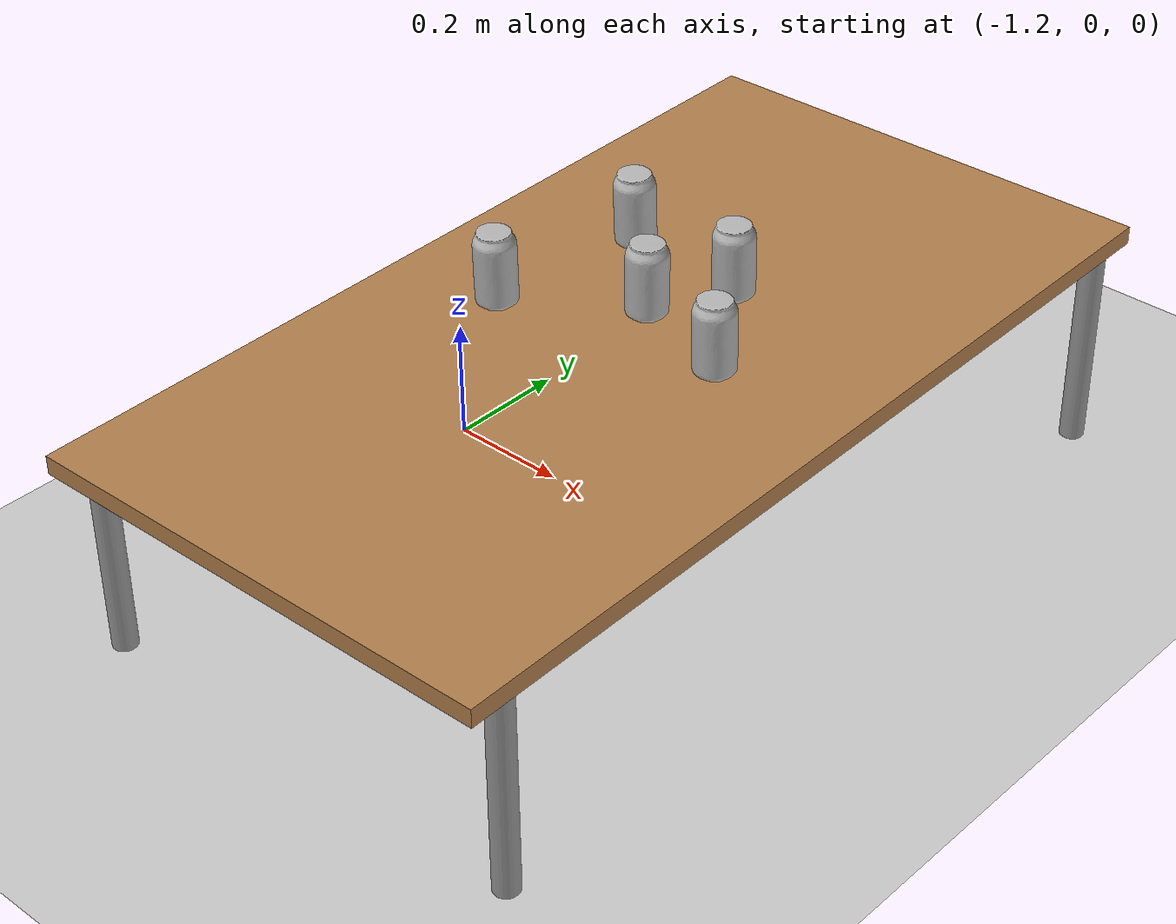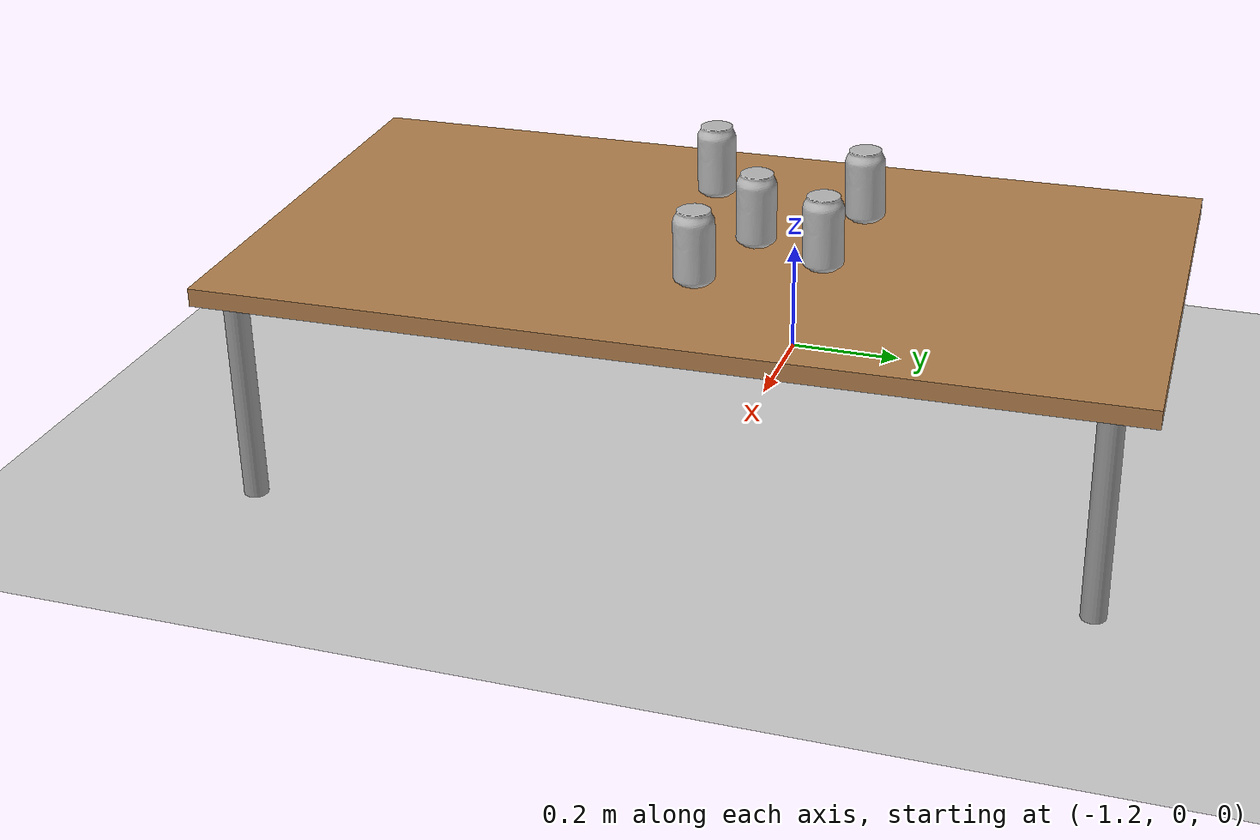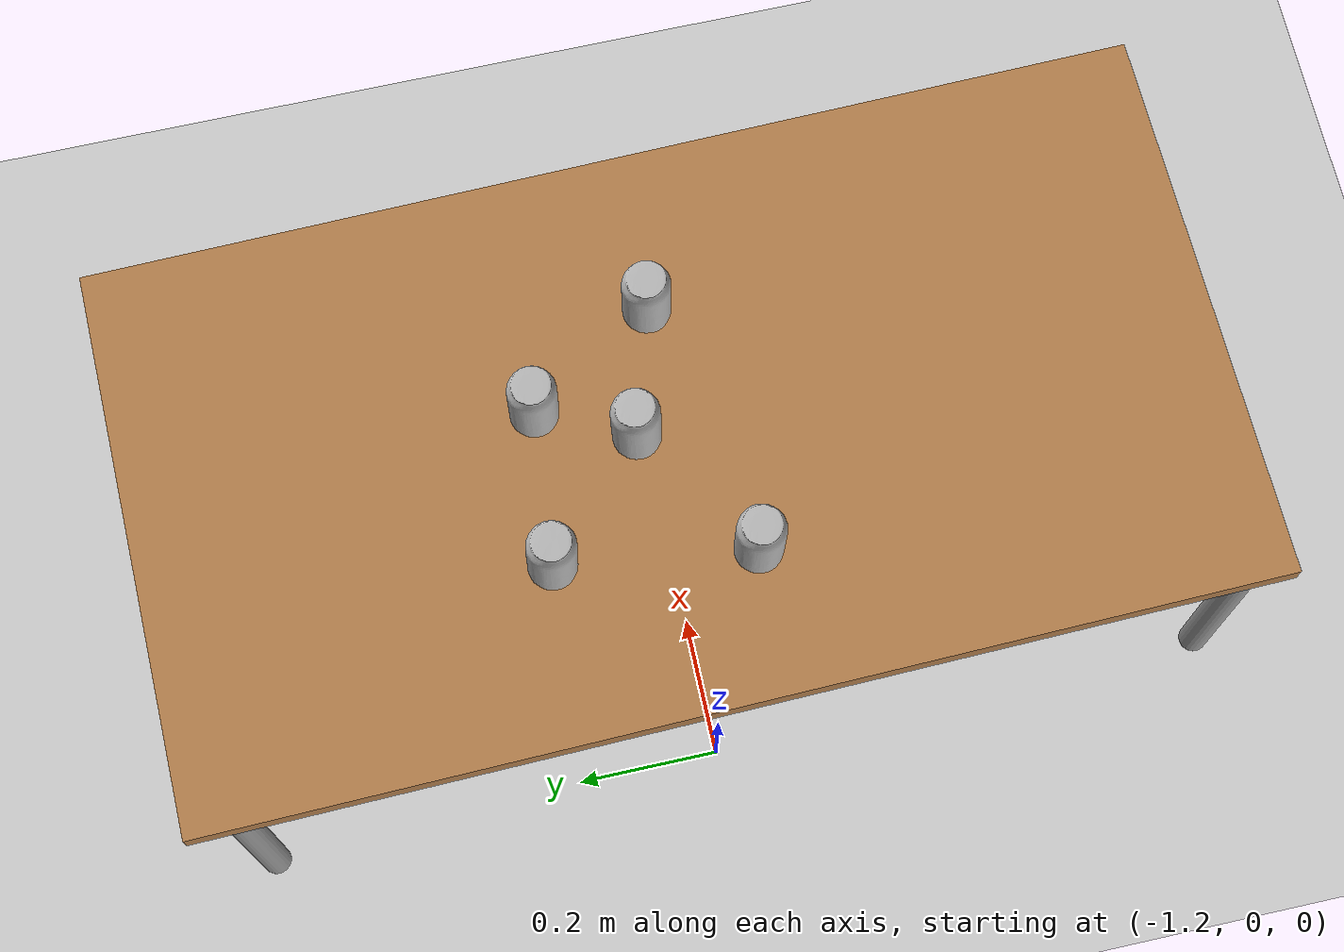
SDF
<sdf version="1.6">
 <world name="default">
  <model name="ground_plane">
   <static>1</static>
   <link name="link">
    <collision name="collision">
     <geometry><plane><normal>0 0 1</normal><size>100 100</size></plane></geometry>
     <surface>
      <contact><collide_bitmask>65535</collide_bitmask></contact>
      <friction><ode><mu>100</mu><mu2>50</mu2></ode></friction>
     </surface>
    </collision>
    <visual name="visual">
     <cast_shadows>0</cast_shadows>
     <geometry><plane><normal>0 0 1</normal><size>100 100</size></plane></geometry>
     <material>
      <script><uri>file://media/materials/scripts/gazebo.material</uri><name>Gazebo/Grey</name></script>
     </material>
    </visual>
   </link>
  </model>
  <light name="sun" type="directional">
   <pose>0 0 10 0 -0 0</pose>
   <diffuse>0.8 0.8 0.8 1</diffuse>
   <specular>0.2 0.2 0.2 1</specular>
   <attenuation>
    <range>1000</range>
    <constant>0.9</constant>
    <linear>0.01</linear>
    <quadratic>0.001</quadratic>
   </attenuation>
   <direction>-0.5 0.1 -0.9</direction>
  </light>
  <gravity>0 0 -9.8</gravity>
  <magnetic_field>6e-06 2.3e-05 -4.2e-05</magnetic_field>
  <atmosphere type="adiabatic"/>
  <physics name="default_physics" default="0" type="ode">
   <max_step_size>0.001</max_step_size>
   <real_time_factor>1</real_time_factor>
   <real_time_update_rate>1000</real_time_update_rate>
  </physics>
  <scene><ambient>0.4 0.4 0.4 1</ambient><background>0.7 0.7 0.7 1</background><shadows>1</shadows></scene>
  <audio><device>default</device></audio>
  <spherical_coordinates>
   <surface_model>EARTH_WGS84</surface_model>
   <latitude_deg>0</latitude_deg>
   <longitude_deg>0</longitude_deg>
   <elevation>0</elevation>
   <heading_deg>0</heading_deg>
  </spherical_coordinates>
  <model name="short_table">
   <link name="link">
    <inertial>
     <mass>1</mass>
     <inertia><ixx>1</ixx><ixy>0</ixy><ixz>0</ixz><iyy>1</iyy><iyz>0</iyz><izz>1</izz></inertia>
    </inertial>
    <visual name="front_left_leg">
     <pose>0.68 0.38 0.175 0 -0 0</pose>
     <geometry><cylinder><radius>0.02</radius><length>0.35</length></cylinder></geometry>
     <material>
      <script><uri>file://media/materials/scripts/gazebo.material</uri><name>Gazebo/Grey</name></script>
      <shader type="vertex"><normal_map>__default__</normal_map></shader>
      <ambient>0.3 0.3 0.3 1</ambient>
      <diffuse>0.7 0.7 0.7 1</diffuse>
      <specular>0.01 0.01 0.01 1</specular>
      <emissive>0 0 0 1</emissive>
     </material>
    </visual>
    <visual name="visual1">
     <pose>0 0 0.35 0 -0 0</pose>
     <geometry><box><size>1.5 0.8 0.03</size></box></geometry>
     <material>
      <script><uri>file://media/materials/scripts/gazebo.material</uri><name>Gazebo/Wood</name></script>
      <shader type="vertex"><normal_map>__default__</normal_map></shader>
      <ambient>1 1 1 1</ambient>
      <diffuse>1 1 1 1</diffuse>
      <specular>0.2 0.2 0.2 1</specular>
      <emissive>0 0 0 1</emissive>
     </material>
    </visual>
    <visual name="back_right_leg">
     <pose>-0.68 -0.38 0.175 0 -0 0</pose>
     <geometry><cylinder><radius>0.02</radius><length>0.35</length></cylinder></geometry>
     <material>
      <script><uri>file://media/materials/scripts/gazebo.material</uri><name>Gazebo/Grey</name></script>
      <shader type="vertex"><normal_map>__default__</normal_map></shader>
      <ambient>0.3 0.3 0.3 1</ambient>
      <diffuse>0.7 0.7 0.7 1</diffuse>
      <specular>0.01 0.01 0.01 1</specular>
      <emissive>0 0 0 1</emissive>
     </material>
    </visual>
    <visual name="back_left_leg">
     <pose>-0.68 0.38 0.175 0 -0 0</pose>
     <geometry><cylinder><radius>0.02</radius><length>0.35</length></cylinder></geometry>
     <material>
      <script><uri>file://media/materials/scripts/gazebo.material</uri><name>Gazebo/Grey</name></script>
      <shader type="vertex"><normal_map>__default__</normal_map></shader>
      <ambient>0.3 0.3 0.3 1</ambient>
      <diffuse>0.7 0.7 0.7 1</diffuse>
      <specular>0.01 0.01 0.01 1</specular>
      <emissive>0 0 0 1</emissive>
     </material>
    </visual>
    <visual name="front_right_leg">
     <pose>0.68 -0.38 0.175 0 -0 0</pose>
     <geometry><cylinder><radius>0.02</radius><length>0.35</length></cylinder></geometry>
     <material>
      <script><uri>file://media/materials/scripts/gazebo.material</uri><name>Gazebo/Grey</name></script>
      <shader type="vertex"><normal_map>__default__</normal_map></shader>
      <ambient>0.3 0.3 0.3 1</ambient>
      <diffuse>0.7 0.7 0.7 1</diffuse>
      <specular>0.01 0.01 0.01 1</specular>
      <emissive>0 0 0 1</emissive>
     </material>
    </visual>
    <collision name="back_right_leg">
     <pose>-0.68 -0.38 0.175 0 -0 0</pose>
     <geometry><cylinder><radius>0.02</radius><length>0.35</length></cylinder></geometry>
     <surface>
      <friction>
       <ode><mu>1</mu><mu2>1</mu2><fdir1>0 0 0</fdir1><slip1>0</slip1><slip2>0</slip2></ode>
       <torsional>
        <coefficient>1</coefficient>
        <patch_radius>0</patch_radius>
        <surface_radius>0</surface_radius>
        <use_patch_radius>1</use_patch_radius>
        <ode><slip>0</slip></ode>
       </torsional>
      </friction>
      <bounce><restitution_coefficient>0</restitution_coefficient><threshold>1e+06</threshold></bounce>
      <contact>
       <collide_without_contact>0</collide_without_contact>
       <collide_without_contact_bitmask>1</collide_without_contact_bitmask>
       <collide_bitmask>1</collide_bitmask>
       <ode>
        <soft_cfm>0</soft_cfm>
        <soft_erp>0.2</soft_erp>
        <kp>1e+13</kp>
        <kd>1</kd>
        <max_vel>0.01</max_vel>
        <min_depth>0</min_depth>
       </ode>
       <bullet>
        <split_impulse>1</split_impulse>
        <split_impulse_penetration_threshold>-0.01</split_impulse_penetration_threshold>
        <soft_cfm>0</soft_cfm>
        <soft_erp>0.2</soft_erp>
        <kp>1e+13</kp>
        <kd>1</kd>
       </bullet>
      </contact>
     </surface>
    </collision>
    <collision name="front_right_leg">
     <pose>0.68 -0.38 0.175 0 -0 0</pose>
     <geometry><cylinder><radius>0.02</radius><length>0.35</length></cylinder></geometry>
     <surface>
      <friction>
       <ode><mu>1</mu><mu2>1</mu2><fdir1>0 0 0</fdir1><slip1>0</slip1><slip2>0</slip2></ode>
       <torsional>
        <coefficient>1</coefficient>
        <patch_radius>0</patch_radius>
        <surface_radius>0</surface_radius>
        <use_patch_radius>1</use_patch_radius>
        <ode><slip>0</slip></ode>
       </torsional>
      </friction>
      <bounce><restitution_coefficient>0</restitution_coefficient><threshold>1e+06</threshold></bounce>
      <contact>
       <collide_without_contact>0</collide_without_contact>
       <collide_without_contact_bitmask>1</collide_without_contact_bitmask>
       <collide_bitmask>1</collide_bitmask>
       <ode>
        <soft_cfm>0</soft_cfm>
        <soft_erp>0.2</soft_erp>
        <kp>1e+13</kp>
        <kd>1</kd>
        <max_vel>0.01</max_vel>
        <min_depth>0</min_depth>
       </ode>
       <bullet>
        <split_impulse>1</split_impulse>
        <split_impulse_penetration_threshold>-0.01</split_impulse_penetration_threshold>
        <soft_cfm>0</soft_cfm>
        <soft_erp>0.2</soft_erp>
        <kp>1e+13</kp>
        <kd>1</kd>
       </bullet>
      </contact>
     </surface>
    </collision>
    <collision name="front_left_leg">
     <pose>0.68 0.38 0.175 0 -0 0</pose>
     <geometry><cylinder><radius>0.02</radius><length>0.35</length></cylinder></geometry>
     <surface>
      <friction>
       <ode><mu>1</mu><mu2>1</mu2><fdir1>0 0 0</fdir1><slip1>0</slip1><slip2>0</slip2></ode>
       <torsional>
        <coefficient>1</coefficient>
        <patch_radius>0</patch_radius>
        <surface_radius>0</surface_radius>
        <use_patch_radius>1</use_patch_radius>
        <ode><slip>0</slip></ode>
       </torsional>
      </friction>
      <bounce><restitution_coefficient>0</restitution_coefficient><threshold>1e+06</threshold></bounce>
      <contact>
       <collide_without_contact>0</collide_without_contact>
       <collide_without_contact_bitmask>1</collide_without_contact_bitmask>
       <collide_bitmask>1</collide_bitmask>
       <ode>
        <soft_cfm>0</soft_cfm>
        <soft_erp>0.2</soft_erp>
        <kp>1e+13</kp>
        <kd>1</kd>
        <max_vel>0.01</max_vel>
        <min_depth>0</min_depth>
       </ode>
       <bullet>
        <split_impulse>1</split_impulse>
        <split_impulse_penetration_threshold>-0.01</split_impulse_penetration_threshold>
        <soft_cfm>0</soft_cfm>
        <soft_erp>0.2</soft_erp>
        <kp>1e+13</kp>
        <kd>1</kd>
       </bullet>
      </contact>
     </surface>
    </collision>
    <collision name="back_left_leg">
     <pose>-0.68 0.38 0.175 0 -0 0</pose>
     <geometry><cylinder><radius>0.02</radius><length>0.35</length></cylinder></geometry>
     <surface>
      <friction>
       <ode><mu>1</mu><mu2>1</mu2><fdir1>0 0 0</fdir1><slip1>0</slip1><slip2>0</slip2></ode>
       <torsional>
        <coefficient>1</coefficient>
        <patch_radius>0</patch_radius>
        <surface_radius>0</surface_radius>
        <use_patch_radius>1</use_patch_radius>
        <ode><slip>0</slip></ode>
       </torsional>
      </friction>
      <bounce><restitution_coefficient>0</restitution_coefficient><threshold>1e+06</threshold></bounce>
      <contact>
       <collide_without_contact>0</collide_without_contact>
       <collide_without_contact_bitmask>1</collide_without_contact_bitmask>
       <collide_bitmask>1</collide_bitmask>
       <ode>
        <soft_cfm>0</soft_cfm>
        <soft_erp>0.2</soft_erp>
        <kp>1e+13</kp>
        <kd>1</kd>
        <max_vel>0.01</max_vel>
        <min_depth>0</min_depth>
       </ode>
       <bullet>
        <split_impulse>1</split_impulse>
        <split_impulse_penetration_threshold>-0.01</split_impulse_penetration_threshold>
        <soft_cfm>0</soft_cfm>
        <soft_erp>0.2</soft_erp>
        <kp>1e+13</kp>
        <kd>1</kd>
       </bullet>
      </contact>
     </surface>
    </collision>
    <collision name="surface">
     <pose>0 0 0.35 0 -0 0</pose>
     <geometry><box><size>1.5 0.8 0.03</size></box></geometry>
     <surface>
      <friction>
       <ode><mu>0.6</mu><mu2>0.6</mu2><fdir1>0 0 0</fdir1><slip1>0</slip1><slip2>0</slip2></ode>
       <torsional>
        <coefficient>1</coefficient>
        <patch_radius>0</patch_radius>
        <surface_radius>0</surface_radius>
        <use_patch_radius>1</use_patch_radius>
        <ode><slip>0</slip></ode>
       </torsional>
      </friction>
      <bounce><restitution_coefficient>0</restitution_coefficient><threshold>1e+06</threshold></bounce>
      <contact>
       <collide_without_contact>0</collide_without_contact>
       <collide_without_contact_bitmask>1</collide_without_contact_bitmask>
       <collide_bitmask>1</collide_bitmask>
       <ode>
        <soft_cfm>0</soft_cfm>
        <soft_erp>0.2</soft_erp>
        <kp>1e+13</kp>
        <kd>1</kd>
        <max_vel>0.01</max_vel>
        <min_depth>0</min_depth>
       </ode>
       <bullet>
        <split_impulse>1</split_impulse>
        <split_impulse_penetration_threshold>-0.01</split_impulse_penetration_threshold>
        <soft_cfm>0</soft_cfm>
        <soft_erp>0.2</soft_erp>
        <kp>1e+13</kp>
        <kd>1</kd>
       </bullet>
      </contact>
     </surface>
    </collision>
   </link>
   <static>1</static>
   <pose>-0.819626 -0.028687 0 0 -0 1.59322</pose>
  </model>
  <model name="coke_can">
   <link name="link">
    <inertial>
     <pose>0 0 0.06 0 -0 0</pose>
     <mass>0.39</mass>
     <inertia>
      <ixx>0.00055575</ixx>
      <ixy>0</ixy>
      <ixz>0</ixz>
      <iyy>0.00055575</iyy>
      <iyz>0</iyz>
      <izz>0.0001755</izz>
     </inertia>
    </inertial>
    <collision name="collision">
     <pose>0.003937 0.004724 -0.18 0 -0 0</pose>
     <geometry><mesh><uri>model://coke_can/meshes/coke_can.dae</uri></mesh></geometry>
     <surface>
      <friction><ode><mu>1</mu><mu2>1</mu2></ode></friction>
      <contact><ode><kp>1e+07</kp><kd>1</kd><min_depth>0.001</min_depth><max_vel>0.1</max_vel></ode></contact>
     </surface>
    </collision>
    <visual name="visual">
     <pose>0.003937 0.004724 -0.18 0 -0 0</pose>
     <geometry><mesh><uri>model://coke_can/meshes/coke_can.dae</uri></mesh></geometry>
    </visual>
   </link>
   <pose>-0.655124 -0.019872 0.361561 0.001933 -0.012631 -0.000331</pose>
  </model>
  <model name="coke_can_0">
   <link name="link">
    <inertial>
     <pose>0 0 0.06 0 -0 0</pose>
     <mass>0.39</mass>
     <inertia>
      <ixx>0.00055575</ixx>
      <ixy>0</ixy>
      <ixz>0</ixz>
      <iyy>0.00055575</iyy>
      <iyz>0</iyz>
      <izz>0.0001755</izz>
     </inertia>
    </inertial>
    <collision name="collision">
     <pose>0.003937 0.004724 -0.18 0 -0 0</pose>
     <geometry><mesh><uri>model://coke_can/meshes/coke_can.dae</uri></mesh></geometry>
     <surface>
      <friction><ode><mu>1</mu><mu2>1</mu2></ode></friction>
      <contact><ode><kp>1e+07</kp><kd>1</kd><min_depth>0.001</min_depth><max_vel>0.1</max_vel></ode></contact>
     </surface>
    </collision>
    <visual name="visual">
     <pose>0.003937 0.004724 -0.18 0 -0 0</pose>
     <geometry><mesh><uri>model://coke_can/meshes/coke_can.dae</uri></mesh></geometry>
    </visual>
   </link>
   <pose>-1.01877 -0.092257 0.361885 0.011945 -0.009279 -2.3e-05</pose>
  </model>
  <model name="coke_can_1">
   <link name="link">
    <inertial>
     <pose>0 0 0.06 0 -0 0</pose>
     <mass>0.39</mass>
     <inertia>
      <ixx>0.00055575</ixx>
      <ixy>0</ixy>
      <ixz>0</ixz>
      <iyy>0.00055575</iyy>
      <iyz>0</iyz>
      <izz>0.0001755</izz>
     </inertia>
    </inertial>
    <collision name="collision">
     <pose>0.003937 0.004724 -0.18 0 -0 0</pose>
     <geometry><mesh><uri>model://coke_can/meshes/coke_can.dae</uri></mesh></geometry>
     <surface>
      <friction><ode><mu>1</mu><mu2>1</mu2></ode></friction>
      <contact><ode><kp>1e+07</kp><kd>1</kd><min_depth>0.001</min_depth><max_vel>0.1</max_vel></ode></contact>
     </surface>
    </collision>
    <visual name="visual">
     <pose>0.003937 0.004724 -0.18 0 -0 0</pose>
     <geometry><mesh><uri>model://coke_can/meshes/coke_can.dae</uri></mesh></geometry>
    </visual>
   </link>
   <pose>-0.982407 0.178335 0.361745 0.025965 -0.004893 -3.5e-05</pose>
  </model>
  <model name="coke_can_2">
   <link name="link">
    <inertial>
     <pose>0 0 0.06 0 -0 0</pose>
     <mass>0.39</mass>
     <inertia>
      <ixx>0.00055575</ixx>
      <ixy>0</ixy>
      <ixz>0</ixz>
      <iyy>0.00055575</iyy>
      <iyz>0</iyz>
      <izz>0.0001755</izz>
     </inertia>
    </inertial>
    <collision name="collision">
     <pose>0.003937 0.004724 -0.18 0 -0 0</pose>
     <geometry><mesh><uri>model://coke_can/meshes/coke_can.dae</uri></mesh></geometry>
     <surface>
      <friction><ode><mu>1</mu><mu2>1</mu2></ode></friction>
      <contact><ode><kp>1e+07</kp><kd>1</kd><min_depth>0.001</min_depth><max_vel>0.1</max_vel></ode></contact>
     </surface>
    </collision>
    <visual name="visual">
     <pose>0.003937 0.004724 -0.18 0 -0 0</pose>
     <geometry><mesh><uri>model://coke_can/meshes/coke_can.dae</uri></mesh></geometry>
    </visual>
   </link>
   <pose>-0.829998 0.031059 0.36243 -0.010008 0.003576 -0.002124</pose>
  </model>
  <model name="coke_can_3">
   <link name="link">
    <inertial>
     <pose>0 0 0.06 0 -0 0</pose>
     <mass>0.39</mass>
     <inertia>
      <ixx>0.00055575</ixx>
      <ixy>0</ixy>
      <ixz>0</ixz>
      <iyy>0.00055575</iyy>
      <iyz>0</iyz>
      <izz>0.0001755</izz>
     </inertia>
    </inertial>
    <collision name="collision">
     <pose>0.003937 0.004724 -0.18 0 -0 0</pose>
     <geometry><mesh><uri>model://coke_can/meshes/coke_can.dae</uri></mesh></geometry>
     <surface>
      <friction><ode><mu>1</mu><mu2>1</mu2></ode></friction>
      <contact><ode><kp>1e+07</kp><kd>1</kd><min_depth>0.001</min_depth><max_vel>0.1</max_vel></ode></contact>
     </surface>
    </collision>
    <visual name="visual">
     <pose>0.003937 0.004724 -0.18 0 -0 0</pose>
     <geometry><mesh><uri>model://coke_can/meshes/coke_can.dae</uri></mesh></geometry>
    </visual>
   </link>
   <pose>-0.768946 0.159529 0.361863 0.009672 -0.00834 -4.2e-05</pose>
  </model>
  <plugin name="gazebo_geometries_plugin" filename="libgazebo_geometries_plugin.so"/>
 </world>
</sdf>
